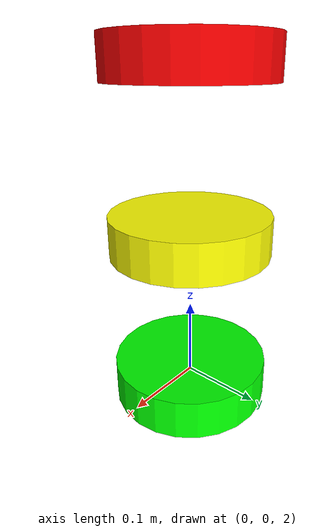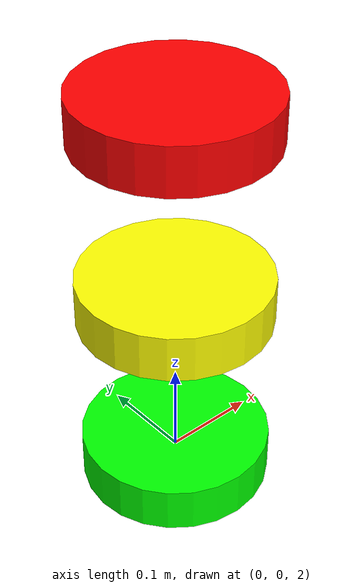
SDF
<?xml version='1.0'?>
<sdf version='1.6'>
  <world name='default'>

    <include>
      <uri>file://../models/traffic_light.sdf</uri>
      <name>traffic_light</name>
      <pose>0 0 0 0 0 0</pose>
    </include>

    <plugin name="traffic_light_controller" filename="libTrafficLightController.so"/>

  </world>
</sdf>

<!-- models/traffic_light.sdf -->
<sdf version='1.6'>
  <model name='traffic_light'>
    <link name='light_post'>
      <visual name='green_light'>
        <geometry>
          <cylinder>
            <radius>0.1</radius>
            <length>0.05</length>
          </cylinder>
        </geometry>
        <material>
          <ambient>0 1 0 1</ambient>
          <diffuse>0 1 0 1</diffuse>
        </material>
        <pose>0 0 2 0 0 0</pose>
      </visual>

      <visual name='yellow_light'>
        <geometry>
          <cylinder>
            <radius>0.1</radius>
            <length>0.05</length>
          </cylinder>
        </geometry>
        <material>
          <ambient>1 1 0 1</ambient>
          <diffuse>1 1 0 1</diffuse>
        </material>
        <pose>0 0 2.2 0 0 0</pose>
      </visual>

      <visual name='red_light'>
        <geometry>
          <cylinder>
            <radius>0.1</radius>
            <length>0.05</length>
          </cylinder>
        </geometry>
        <material>
          <ambient>1 0 0 1</ambient>
          <diffuse>1 0 0 1</diffuse>
        </material>
        <pose>0 0 2.4 0 0 0</pose>
      </visual>
    </link>
  </model>
</sdf>
